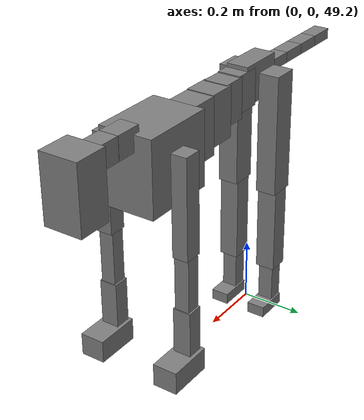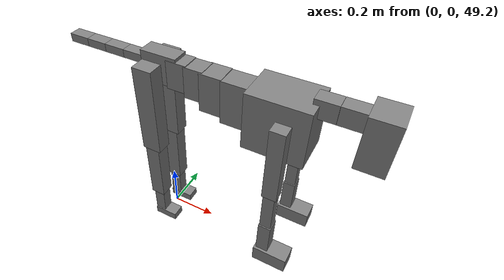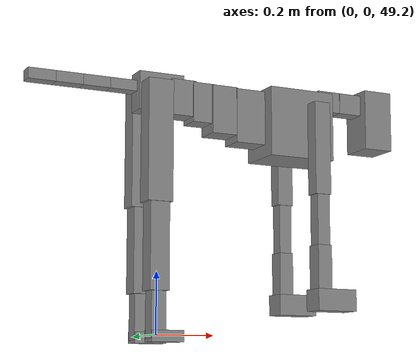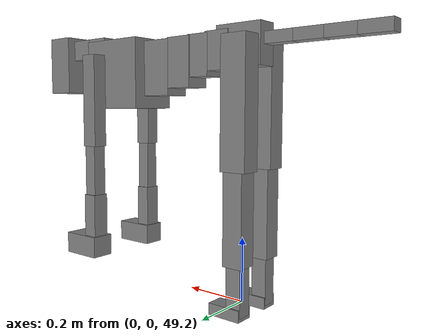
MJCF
<mujoco model="dog">

    <default>
        <joint armature="0.02" stiffness="1" damping="0.2" limited="true"/>
        <geom condim="3" friction="1 0.05 0.05" margin="0.01"/>
        <motor ctrllimited="true" ctrlrange="-1.0 1.0" forcelimited="true" gear="50"/>
    </default>

    <compiler inertiafromgeom="true" angle="radian"/>

    <option timestep="0.016" iterations="50" tolerance="1e-10" solver="Newton" jacobian="dense" cone="pyramidal"/>

    <size nconmax="20000" njmax="60000" nstack="5000000"/>
    <visual>
        <map force="0.1" zfar="30"/>
        <rgba haze="0.15 0.25 0.35 1"/>
        <quality shadowsize="2048"/>
        <global offwidth="800" offheight="800"/>
    </visual>

    <asset>
        <texture type="skybox" builtin="gradient" rgb1="0.3 0.5 0.7" rgb2="0 0 0" width="512" height="512"/>
        <texture name="texplane" type="2d" builtin="checker" rgb1=".2 .3 .4" rgb2=".1 0.15 0.2" width="512" height="512"
                 mark="cross" markrgb=".8 .8 .8"/>
        <texture name="texgeom" type="cube" builtin="flat" mark="cross" width="127" height="1278" rgb1="0.8 0.6 0.4"
                 rgb2="0.8 0.6 0.4" markrgb="1 1 1" random="0.01"/>

        <material name="matplane" reflectance="0.3" texture="texplane" texrepeat="1 1" texuniform="true"/>
        <material name="matgeom" texture="texgeom" texuniform="true" rgba="0.8 0.6 .4 1"/>
    </asset>

    <worldbody>
        <geom name="floor" pos="0 0 0" size="0 0 .25" type="plane" material="matplane" condim="3"/>

        <light directional="false" diffuse=".2 .2 .2" specular="0 0 0" pos="0 0 5" dir="0 0 -1" castshadow="false"/>
        <light mode="targetbodycom" target="torso" directional="false" diffuse=".8 .8 .8" specular="0.3 0.3 0.3"
               pos="0 0 4.0" dir="0 0 -1"/>

        <body name="root" pos="0 0 50">
            <freejoint name="root_1"/>
            <geom type="box" pos="0 0 -0.02" size="0.0774  0.0358  0.063" density="2030"/>

            <body name="spine1" pos="0.054 0 0">
                <joint name="spine1_y" axis="0 1 0" range="0 0.7" limited="true"/>
                <geom type="box" pos="0.02375 0 -0.03" size="0.04375  0.0375  0.05985" density="2030"/>

                <body name="spine2" pos="0.0612 0 0">
                    <joint name="spine2_y" axis="0 1 0" range="-0.15 0.15" limited="true"/>
                    <geom type="box" pos="0.03555  0  -0.04" size="0.04055  0.039  0.06615" density="2030"/>

                    <body name="spine3" pos="0.0730 0 0">
                        <joint name="spine3_y" axis="0 1 0" range="-0.15 0.15" limited="true"/>
                        <geom type="box" pos="0.03555  0  -0.057" size="0.04555  0.0445  0.081" density="2030"/>

                        <body name="spine4" pos="0.0780 0 0">
                            <joint name="spine4_y" axis="0 1 0" range="-0.15 0.15" limited="true"/>
                            <geom type="box" pos="0.05265  0  -0.07" size="0.05265  0.045  0.09135" density="2030"/>

                            <body name="torso" pos="0.1082 0 0">
                                <joint name="torso_y" axis="0 1 0" range="-0.15 0.15" limited="true"/>
                                <geom type="box" pos="0.11925  0  -0.085" size="0.11925  0.085  0.11745"
                                      density="2030"/>

                                <body name="neck1" pos="0.2160  0   0.0180">
                                    <joint name="neck1_y" axis="0 1 0" range="-1.2  -1" limited="true"/>
                                    <geom type="box" pos="0.0423  0  0" size="0.0423  0.03  0.036" density="2325"/>

                                    <body name="neck2" pos="0.0853  0  0">
                                        <joint name="neck2_y" axis="0 1 0" range="0.1  0" limited="true"/>
                                        <geom type="box" pos="0.0423  0  0" size="0.0423  0.03  0.036" density="2325"/>

                                        <body name="head" pos="0.0853  0  0">
                                            <joint name="head_y" axis="0 1 0" range="-0.3  -0.2" limited="true"/>
                                            <geom type="box" pos="0.0531  0  -0.055" size="0.0531  0.06  0.1044"
                                                  density="4030"/>

                                        </body>
                                    </body>
                                </body>

                                <body name="front_shoulder" pos="0.156  0   -0.0480">
                                    <joint name="front_shoulder_y" axis="0 1 0" range="-1 1.5" limited="true"/>
                                    <geom type="box" pos="0 0.13 -0.1295" size="0.0288  0.0246  0.1561" density="1158"/>
                                    <geom type="box" pos="0 -0.13 -0.1295" size="0.0288  0.0246  0.1561"
                                          density="1158"/>

                                    <body name="front_elbow" pos="0  0  -0.2589">
                                        <joint name="front_elbow_y" axis="0 1 0" range="-2 0" limited="true"/>
                                        <geom type="box" pos="0 0.13 -0.1043" size="0.0227  0.0232  0.1043"
                                              density="1081"/>
                                        <geom type="box" pos="0 -0.13 -0.1043" size="0.0227  0.0232  0.1043"
                                              density="1081"/>

                                        <body name="front_wrist" pos="0  0  -0.2087">
                                            <joint name="front_wrist_y" axis="0 1 0" range="-0.2 0" limited="true"/>
                                            <geom type="box" pos="0 0.13 -0.0733" size="0.0254  0.0282  0.0865"
                                                  density="1664"/>
                                            <geom type="box" pos="0 -0.13 -0.0733" size="0.0254  0.0282  0.0865"
                                                  density="1664"/>

                                            <body name="front_finger_end" pos="0  0  -0.1467">
                                                <joint name="front_finger_y" axis="0 1 0" range="-0.4 1"
                                                       limited="true"/>
                                                <geom type="box" pos="0.0389  0.13  -0.0207"
                                                      size="0.0713  0.0389  0.0357" density="1515"/>
                                                <geom type="box" pos="0.0389  -0.13  -0.0207"
                                                      size="0.0713  0.0389  0.0357" density="1515"/>

                                            </body>

                                        </body>
                                    </body>
                                </body>

                            </body>
                        </body>
                    </body>
                </body>
            </body>

            <body name="back_hip" pos="-0.03 0 -0.018">
                <joint name="back_hip_y" axis="0 1 0" range="-1.5 0.3" limited="true"/>
                <geom type="box" pos="0 0.07 -0.1741" size="0.0424  0.0333  0.1969" density="1154"/>
                <geom type="box" pos="0 -0.07 -0.1741" size="0.0424  0.0333  0.1969" density="1154"/>

                <body name="back_knee" pos="0  0  -0.3482">
                    <joint name="back_knee_y" axis="0 1 0" range="0 2.8" limited="true"/>
                    <geom type="box" pos="0 0.07 -0.1432" size="0.0323  0.0318  0.1587" density="1227"/>
                    <geom type="box" pos="0 -0.07 -0.1432" size="0.0323  0.0318  0.1587" density="1227"/>

                    <body name="back_ankle" pos="0  0  -0.2863">
                        <joint name="back_ankle_y" axis="0 1 0" range="-2.2 0" limited="true"/>
                        <geom type="box" pos="0 0.07 -0.0760" size="0.0246  0.0246  0.0872" density="1284"/>
                        <geom type="box" pos="0 -0.07 -0.0760" size="0.0246  0.0246  0.0872" density="1284"/>

                        <body name="back_toe_end" pos="0  0  -0.1520">
                            <joint name="back_toe_y" axis="0 1 0" range="-0.4 1" limited="true"/>
                            <geom type="box" pos="0.0295  0.07  -0.0031" size="0.0540  0.0295  0.0181" density="1515"/>
                            <geom type="box" pos="0.0295  -0.07  -0.0031" size="0.0540  0.0295  0.0181" density="1515"/>

                        </body>
                    </body>
                </body>
            </body>

            <body name="tail1" pos="-0.074 0 -0.006">
                <joint name="tail1_y" axis="0 1 0" range="-0.2 0.2" limited="true"/>
                <geom type="box" pos="-0.0536  0  0" size="0.045  0.025  0.0175" density="1587"/>

                <body name="tail2" pos="-0.09 0 0">
                    <joint name="tail2_y" axis="0 1 0" range="-0.2 0.2" limited="true"/>
                    <geom type="box" pos="-0.0536  0  0" size="0.045  0.025  0.0175" density="1587"/>

                    <body name="tail3" pos="-0.09 0 0">
                        <joint name="tail3_y" axis="0 1 0" range="-0.2 0.2" limited="true"/>
                        <geom type="box" pos="-0.0536  0  0" size="0.045  0.025  0.0175" density="1587"/>

                        <body name="tail4" pos="-0.09 0 0">
                            <joint name="tail4_y" axis="0 1 0" range="-0.2 0.2" limited="true"/>
                            <geom type="box" pos="-0.0536  0  0" size="0.045  0.025  0.0175" density="1587"/>

                        </body>
                    </body>
                </body>
            </body>
        </body>
    </worldbody>

    <actuator>
        <motor joint="spine1_y" forcerange="-150 150     "/>
        <motor joint="spine2_y" forcerange="-150 150     "/>
        <motor joint="spine3_y" forcerange="-150 150     "/>
        <motor joint="spine4_y" forcerange="-150 150     "/>
        <motor joint="torso_y" forcerange="-150 150     "/>
        <motor joint="neck1_y" forcerange="-100 100       "/>
        <motor joint="neck2_y" forcerange="-100 100       "/>
        <motor joint="head_y" forcerange="-150 150       "/>
        <motor joint="front_shoulder_y" forcerange="-156.33 107.49"/>
        <motor joint="front_elbow_y" forcerange="-120.65 147.95"/>
        <motor joint="front_wrist_y" forcerange="-99.77 126.13"/>
        <motor joint="front_finger_y" forcerange="-75.29 92.24"/>
        <motor joint="back_hip_y" forcerange="-263.99 379.92"/>
        <motor joint="back_knee_y" forcerange="-350.71 312.07"/>
        <motor joint="back_angle_y" forcerange="-94.75 198.25"/>
        <motor joint="back_toe_y" forcerange="-84.51 71.28"/>
        <motor joint="tail1_y" forcerange="-50 50     "/>
        <motor joint="tail2_y" forcerange="-50 50     "/>
        <motor joint="tail3_y" forcerange="-50 50     "/>
        <motor joint="tail4_y" forcerange="-50 50     "/>
    </actuator>
</mujoco>
